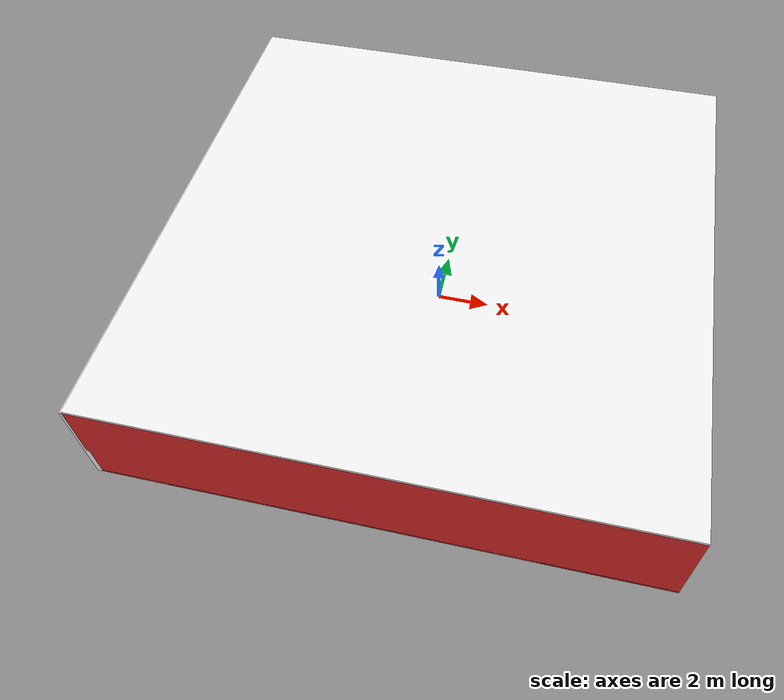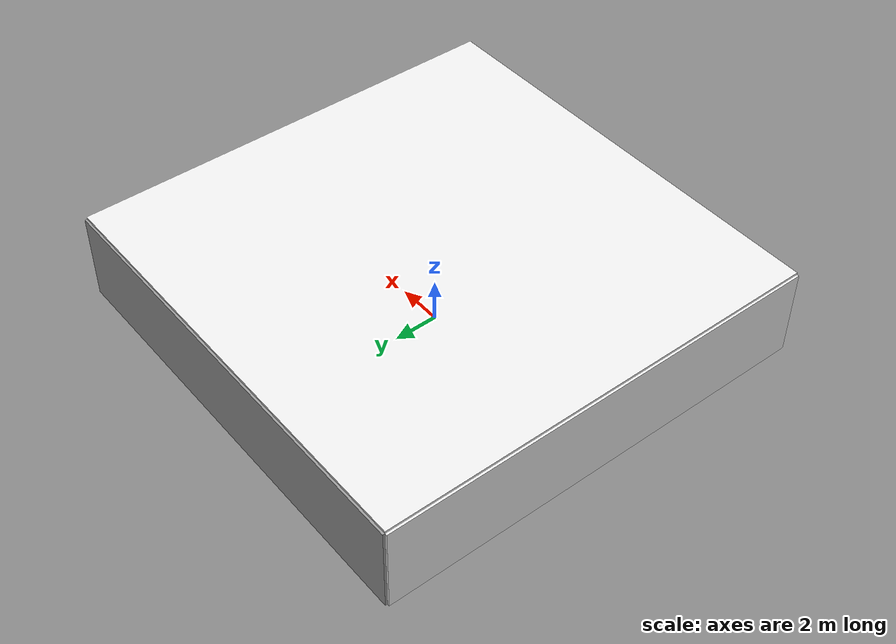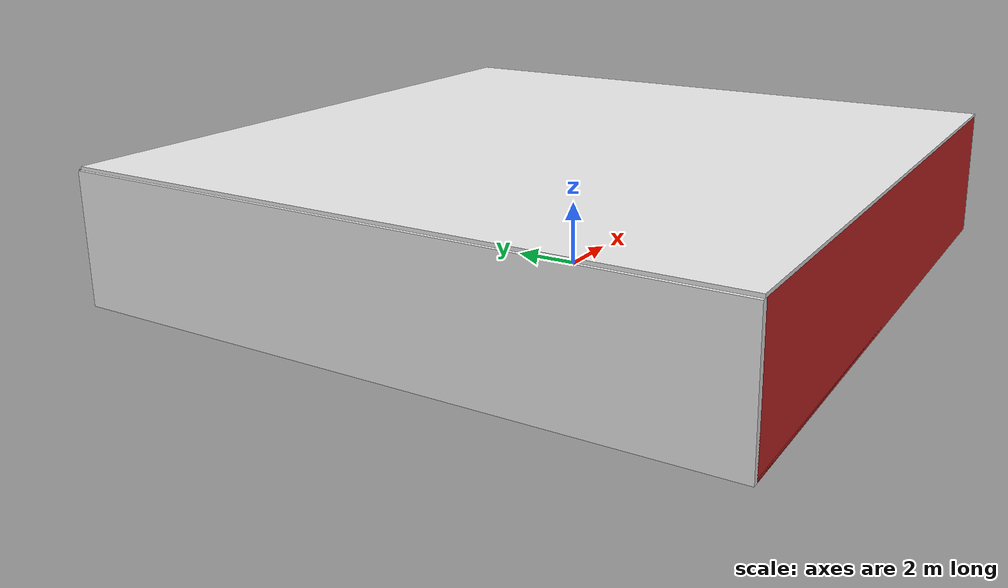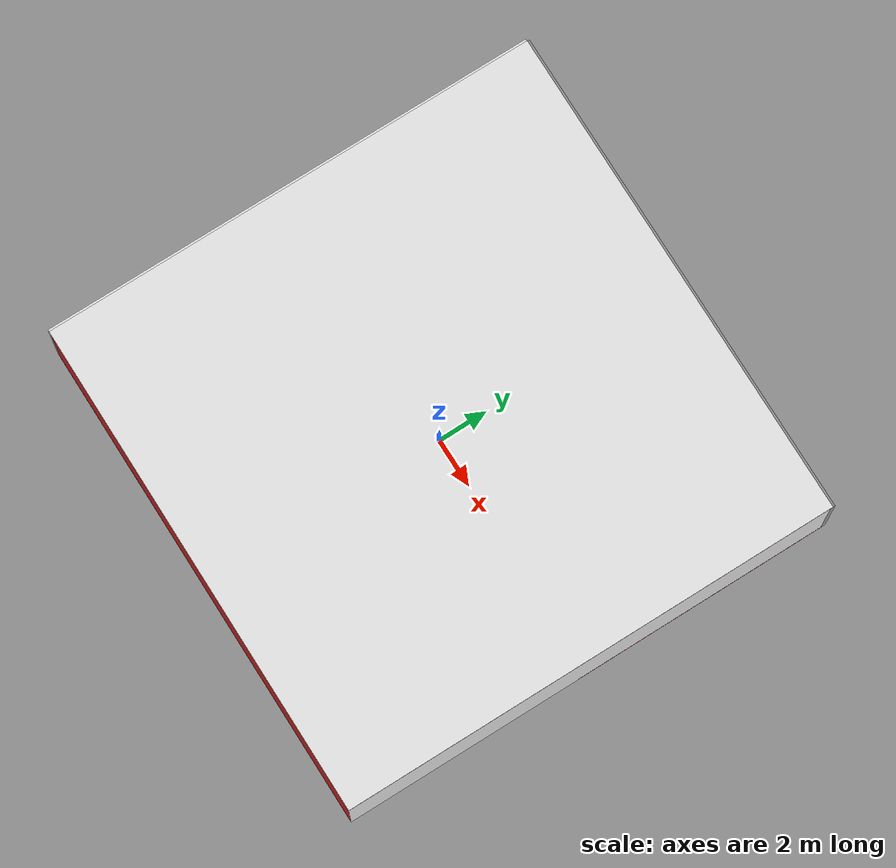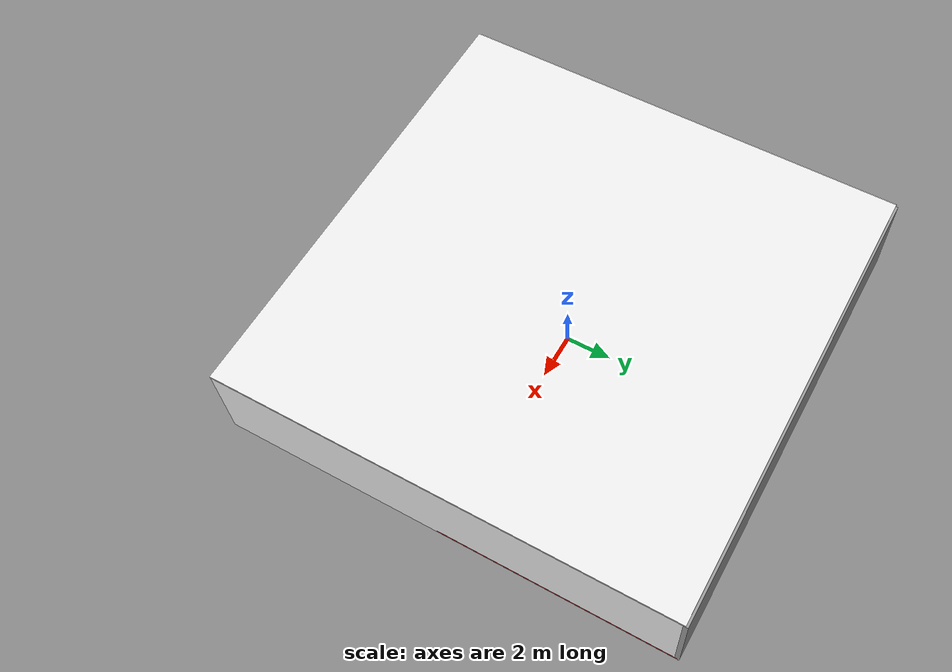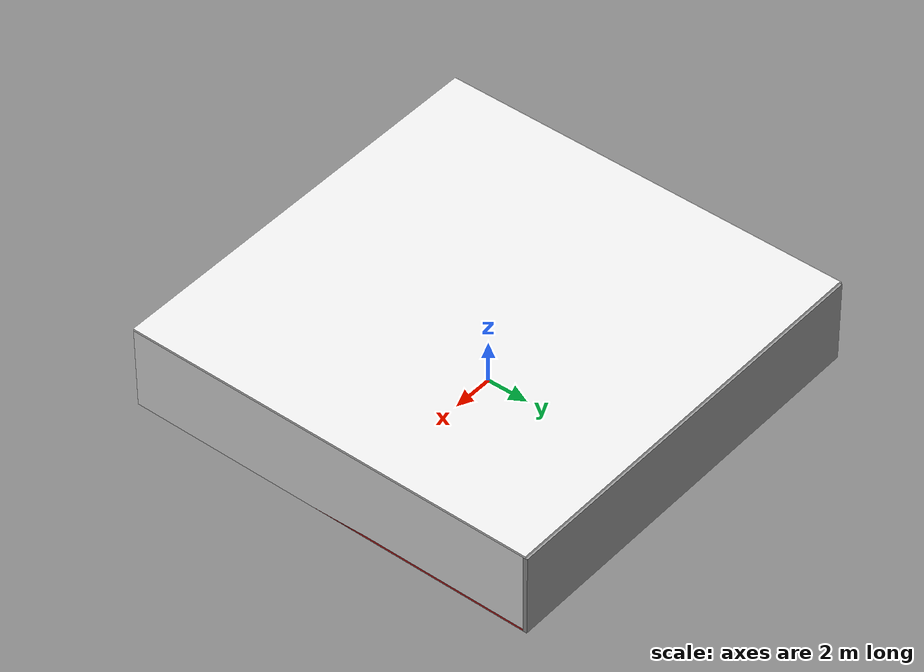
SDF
<sdf version="1.4">
 <world name="default">
  <physics type="ode">
   <max_step_size>0.001</max_step_size>
   <real_time_factor>1</real_time_factor>
   <real_time_update_rate>1000</real_time_update_rate>
   <gravity>0 0 -9.8</gravity>
  </physics>
  <scene><ambient>0.4 0.4 0.4 1</ambient><background>0.7 0.7 0.7 1</background><shadows>1</shadows></scene>
  <model name="Surrounding">
   <static>1</static>
   <link name="Ceiling">
    <collision name="Ceiling_Collision"><geometry><box><size>20 20 0.1</size></box></geometry></collision>
    <visual name="Ceiling_Visual">
     <geometry><box><size>20 20 0.1</size></box></geometry>
     <material>
      <script><uri>file://media/materials/scripts/gazebo.material</uri><name>Gazebo/WhiteGlow</name></script>
     </material>
    </visual>
    <pose>0 0 4.05 0 0 0</pose>
   </link>
   <link name="Wall_South">
    <collision name="Wall_South_Collision">
     <geometry><box><size>20 0 4</size></box></geometry>
     <pose>0 0 2 0 -0 0</pose>
    </collision>
    <visual name="Wall_South_Visual">
     <pose>0 0 2 0 -0 0</pose>
     <geometry><box><size>20 0 4</size></box></geometry>
     <material>
      <script><uri>file://media/materials/scripts/gazebo.material</uri><name>Gazebo/Red</name></script>
     </material>
    </visual>
    <velocity_decay><linear>0</linear><angular>0</angular></velocity_decay>
    <pose>0 -10 0 0 -0 0</pose>
   </link>
   <link name="Wall_East">
    <collision name="Wall_21_Collision">
     <geometry><box><size>20 0 4</size></box></geometry>
     <pose>0 0 2 0 -0 0</pose>
    </collision>
    <visual name="Wall_21_Visual">
     <pose>0 0 2 0 -0 0</pose>
     <geometry><box><size>20 0 4</size></box></geometry>
     <material>
      <script><uri>file://media/materials/scripts/gazebo.material</uri><name>Gazebo/White</name></script>
     </material>
    </visual>
    <velocity_decay><linear>0</linear><angular>0</angular></velocity_decay>
    <pose>10 0 0 0 -0 1.5708</pose>
   </link>
   <link name="Wall_North">
    <collision name="Wall_22_Collision">
     <geometry><box><size>20 0.2 4</size></box></geometry>
     <pose>0 0 2 0 -0 0</pose>
    </collision>
    <visual name="Wall_22_Visual">
     <pose>0 0 2 0 -0 0</pose>
     <geometry><box><size>20 0.2 4</size></box></geometry>
     <material>
      <script><uri>file://media/materials/scripts/gazebo.material</uri><name>Gazebo/GreyGradientSky</name></script>
     </material>
    </visual>
    <velocity_decay><linear>0</linear><angular>0</angular></velocity_decay>
    <pose>0 10 0 0 -0 0</pose>
   </link>
   <link name="Wall_West">
    <collision name="Wall_23_Collision">
     <geometry><box><size>20 0.2 4</size></box></geometry>
     <pose>0 0 2 0 -0 0</pose>
    </collision>
    <visual name="Wall_23_Visual">
     <pose>0 0 2 0 -0 0</pose>
     <geometry><box><size>20 0.2 4</size></box></geometry>
     <material>
      <script><uri>file://media/materials/scripts/gazebo.material</uri><name>Gazebo/White</name></script>
     </material>
    </visual>
    <velocity_decay><linear>0</linear><angular>0</angular></velocity_decay>
    <pose>-10 0 0 0 0 -1.5708</pose>
   </link>
   <link name="Ground_link">
    <collision name="collision">
     <pose>0 0 .05 0 -0 0</pose>
     <geometry><box><size>20 20 0.1</size></box></geometry>
    </collision>
    <visual name="visual">
     <pose>0 0 .05 0 -0 0</pose>
     <geometry><box><size>20 20 0.1</size></box></geometry>
     <material>
      <script><uri>file://media/materials/scripts/gazebo.material</uri><name>Gazebo/Red</name></script>
     </material>
    </visual>
   </link>
   <static>1</static>
  </model>
  <spherical_coordinates>
   <surface_model>EARTH_WGS84</surface_model>
   <latitude_deg>0</latitude_deg>
   <longitude_deg>0</longitude_deg>
   <elevation>0</elevation>
   <heading_deg>0</heading_deg>
  </spherical_coordinates>
  <light name="lightball_0" type="diffuse">
   <diffuse>0.8 0.8 0.8 1</diffuse>
   <specular>0.2 0.2 0.2 1</specular>
   <attenuation>
    <range>100</range>
    <constant>0.7</constant>
    <linear>0.01</linear>
    <quadratic>0.001</quadratic>
   </attenuation>
   <direction>-0.5 0.1 -0.9</direction>
   <pose>2.22484421128 3.55861361689 1.32795791333 0 0 0</pose>
  </light>
  <light name="lightball_1" type="diffuse">
   <diffuse>0.8 0.8 0.8 1</diffuse>
   <specular>0.2 0.2 0.2 1</specular>
   <attenuation>
    <range>100</range>
    <constant>0.7</constant>
    <linear>0.01</linear>
    <quadratic>0.001</quadratic>
   </attenuation>
   <direction>-0.5 0.1 -0.9</direction>
   <pose>6.3274678323 2.04402453179 2.7280852354 0 0 0</pose>
  </light>
  <light name="lightball_2" type="diffuse">
   <diffuse>0.8 0.8 0.8 1</diffuse>
   <specular>0.2 0.2 0.2 1</specular>
   <attenuation>
    <range>100</range>
    <constant>0.7</constant>
    <linear>0.01</linear>
    <quadratic>0.001</quadratic>
   </attenuation>
   <direction>-0.5 0.1 -0.9</direction>
   <pose>1.41873971504 -4.45965567535 0.970431337923 0 0 0</pose>
  </light>
  <light name="lightball_3" type="diffuse">
   <diffuse>0.8 0.8 0.8 1</diffuse>
   <specular>0.2 0.2 0.2 1</specular>
   <attenuation>
    <range>100</range>
    <constant>0.7</constant>
    <linear>0.01</linear>
    <quadratic>0.001</quadratic>
   </attenuation>
   <direction>-0.5 0.1 -0.9</direction>
   <pose>-1.35020859558 9.36754972823 1.14234675659 0 0 0</pose>
  </light>
  <light name="lightball_4" type="diffuse">
   <diffuse>0.8 0.8 0.8 1</diffuse>
   <specular>0.2 0.2 0.2 1</specular>
   <attenuation>
    <range>100</range>
    <constant>0.7</constant>
    <linear>0.01</linear>
    <quadratic>0.001</quadratic>
   </attenuation>
   <direction>-0.5 0.1 -0.9</direction>
   <pose>-1.13184343609 -3.79045046437 3.70837170839 0 0 0</pose>
  </light>
  <light name="lightball_5" type="diffuse">
   <diffuse>0.8 0.8 0.8 1</diffuse>
   <specular>0.2 0.2 0.2 1</specular>
   <attenuation>
    <range>100</range>
    <constant>0.7</constant>
    <linear>0.01</linear>
    <quadratic>0.001</quadratic>
   </attenuation>
   <direction>-0.5 0.1 -0.9</direction>
   <pose>-0.113660097723 8.36687624432 0.696673574753 0 0 0</pose>
  </light>
  <light name="lightball_6" type="diffuse">
   <diffuse>0.8 0.8 0.8 1</diffuse>
   <specular>0.2 0.2 0.2 1</specular>
   <attenuation>
    <range>100</range>
    <constant>0.7</constant>
    <linear>0.01</linear>
    <quadratic>0.001</quadratic>
   </attenuation>
   <direction>-0.5 0.1 -0.9</direction>
   <pose>8.87498732152 -8.81257837679 2.2583282053 0 0 0</pose>
  </light>
  <light name="lightball_7" type="diffuse">
   <diffuse>0.8 0.8 0.8 1</diffuse>
   <specular>0.2 0.2 0.2 1</specular>
   <attenuation>
    <range>100</range>
    <constant>0.7</constant>
    <linear>0.01</linear>
    <quadratic>0.001</quadratic>
   </attenuation>
   <direction>-0.5 0.1 -0.9</direction>
   <pose>-5.78674603646 1.88495061076 3.31165935231 0 0 0</pose>
  </light>
  <light name="lightball_8" type="diffuse">
   <diffuse>0.8 0.8 0.8 1</diffuse>
   <specular>0.2 0.2 0.2 1</specular>
   <attenuation>
    <range>100</range>
    <constant>0.7</constant>
    <linear>0.01</linear>
    <quadratic>0.001</quadratic>
   </attenuation>
   <direction>-0.5 0.1 -0.9</direction>
   <pose>-5.28401159866 -6.23225831079 0.844451998622 0 0 0</pose>
  </light>
  <light name="lightball_9" type="diffuse">
   <diffuse>0.8 0.8 0.8 1</diffuse>
   <specular>0.2 0.2 0.2 1</specular>
   <attenuation>
    <range>100</range>
    <constant>0.7</constant>
    <linear>0.01</linear>
    <quadratic>0.001</quadratic>
   </attenuation>
   <direction>-0.5 0.1 -0.9</direction>
   <pose>0.146987121293 -6.17166623249 2.4888207249 0 0 0</pose>
  </light>
  <light name="lightball_10" type="diffuse">
   <diffuse>0.8 0.8 0.8 1</diffuse>
   <specular>0.2 0.2 0.2 1</specular>
   <attenuation>
    <range>100</range>
    <constant>0.7</constant>
    <linear>0.01</linear>
    <quadratic>0.001</quadratic>
   </attenuation>
   <direction>-0.5 0.1 -0.9</direction>
   <pose>-6.60567419582 -2.82651413793 0.745597769878 0 0 0</pose>
  </light>
  <light name="lightball_11" type="diffuse">
   <diffuse>0.8 0.8 0.8 1</diffuse>
   <specular>0.2 0.2 0.2 1</specular>
   <attenuation>
    <range>100</range>
    <constant>0.7</constant>
    <linear>0.01</linear>
    <quadratic>0.001</quadratic>
   </attenuation>
   <direction>-0.5 0.1 -0.9</direction>
   <pose>0.321900613546 -3.86787412007 3.03282214618 0 0 0</pose>
  </light>
  <light name="lightball_12" type="diffuse">
   <diffuse>0.8 0.8 0.8 1</diffuse>
   <specular>0.2 0.2 0.2 1</specular>
   <attenuation>
    <range>100</range>
    <constant>0.7</constant>
    <linear>0.01</linear>
    <quadratic>0.001</quadratic>
   </attenuation>
   <direction>-0.5 0.1 -0.9</direction>
   <pose>-4.61768913443 -9.16779238423 0.781531194187 0 0 0</pose>
  </light>
  <include><uri>model://cabinet</uri><pose>-7.71558329549 3.63483307525 0 0 0 3.02561962032</pose></include>
  <include>
   <uri>model://construction_cone</uri>
   <pose>-4.53090757708 -7.78711542097 0 0 0 0.507501272971</pose>
  </include>
  <include>
   <uri>model://textured_shapes</uri>
   <pose>-3.80777534161 6.30778648927 0 0 0 0.711436201404</pose>
  </include>
  <include>
   <uri>model://robocup_3Dsim_goal</uri>
   <pose>-1.80554456232 -7.63320731788 0 0 0 2.34613373403</pose>
  </include>
  <include><uri>model://table</uri><pose>-0.882025297981 3.32511661623 0 0 0 1.34866967116</pose></include>
  <include>
   <uri>model://textured_shapes</uri>
   <pose>3.97488868347 -5.66195719324 0 0 0 1.39929923672</pose>
  </include>
  <include>
   <uri>model://robocup_3Dsim_goal</uri>
   <pose>4.33350771594 0.485168192322 0 0 0 0.470023852247</pose>
  </include>
  <include><uri>model://cabinet</uri><pose>4.72919937906 7.45774010309 0 0 0 2.15087339296</pose></include>
  <include><uri>model://table</uri><pose>8.51085209588 7.39849323296 0 0 0 2.97477356704</pose></include>
 </world>
</sdf>

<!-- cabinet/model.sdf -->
<sdf version="1.5">
  <model name="cabinet">
    <static>true</static>
    <link name="cabinet_bottom_plate">
      <inertial>
        <pose>0 0 -1 0 0 0</pose>
        <inertia>
          <ixx>2.050000</ixx>
          <ixy>0</ixy>
          <ixz>0</ixz>
          <iyy>2.050000</iyy>
          <iyz>0</iyz>
          <izz>2.050000</izz>
        </inertia>
        <mass>25.000000</mass>
      </inertial>
      <collision name="cabinet_bottom_plate_geom">
        <pose>0 0 0.010000 0 0 0</pose>
        <geometry>
          <box>
            <size>0.450000 0.450000 0.020000</size>
          </box>
        </geometry>
      </collision>
      <visual name="cabinet_bottom_plate_geom_visual">
        <pose>0 0 0.010000 0 0 0</pose>
        <geometry>
          <box>
            <size>0.450000 0.450000 0.020000</size>
          </box>
        </geometry>
        <material>
          <script>
            <uri>model://media/materials/scripts/gazebo.material</uri>
            <name>Gazebo/Wood</name>
          </script>
        </material>
      </visual>
      <collision name="cabinet_bottom_plate_geom_cabinet_back_plate">
        <pose>0.235000 0 0.510000 0 0 0</pose>
        <geometry>
          <box>
            <size>0.020000 0.450000 1.020000</size>
          </box>
        </geometry>
      </collision>
      <visual name="cabinet_bottom_plate_geom_cabinet_back_plate_visual">
        <pose>0.235000 0 0.510000 0 0 0</pose>
        <geometry>
          <box>
            <size>0.020000 0.450000 1.020000</size>
          </box>
        </geometry>
        <material>
          <script>
            <uri>model://media/materials/scripts/gazebo.material</uri>
            <name>Gazebo/Wood</name>
          </script>
        </material>
      </visual>
      <collision name="cabinet_bottom_plate_geom_cabinet_left_plate">
        <pose>0 0.235000 0.510000 0 0 0</pose>
        <geometry>
          <box>
            <size>0.450000 0.020000 1.020000</size>
          </box>
        </geometry>
      </collision>
      <visual name="cabinet_bottom_plate_geom_cabinet_left_plate_visual">
        <pose>0 0.235000 0.510000 0 0 0</pose>
        <geometry>
          <box>
            <size>0.450000 0.020000 1.020000</size>
          </box>
        </geometry>
        <material>
          <script>
            <uri>model://media/materials/scripts/gazebo.material</uri>
            <name>Gazebo/Wood</name>
          </script>
        </material>
      </visual>
      <collision name="cabinet_bottom_plate_geom_cabinet_middle_plate">
        <pose>0 0 0.510000 0 0 0</pose>
        <geometry>
          <box>
            <size>0.450000 0.450000 0.020000</size>
          </box>
        </geometry>
      </collision>
      <visual name="cabinet_bottom_plate_geom_cabinet_middle_plate_visual">
        <pose>0 0 0.510000 0 0 0</pose>
        <geometry>
          <box>
            <size>0.450000 0.450000 0.020000</size>
          </box>
        </geometry>
        <material>
          <script>
            <uri>model://media/materials/scripts/gazebo.material</uri>
            <name>Gazebo/Wood</name>
          </script>
        </material>
      </visual>
      <collision name="cabinet_bottom_plate_geom_cabinet_right_plate">
        <pose>0 -0.235000 0.510000 0 0 0</pose>
        <geometry>
          <box>
            <size>0.450000 0.020000 1.020000</size>
          </box>
        </geometry>
      </collision>
      <visual name="cabinet_bottom_plate_geom_cabinet_right_plate_visual">
        <pose>0 -0.235000 0.510000 0 0 0</pose>
        <geometry>
          <box>
            <size>0.450000 0.020000 1.020000</size>
          </box>
        </geometry>
        <material>
          <script>
            <uri>model://media/materials/scripts/gazebo.material</uri>
            <name>Gazebo/Wood</name>
          </script>
        </material>
      </visual>
      <collision name="cabinet_bottom_plate_geom_cabinet_top_plate">
        <pose>0 0 1.010000 0 0 0</pose>
        <geometry>
          <box>
            <size>0.450000 0.450000 0.020000</size>
          </box>
        </geometry>
      </collision>
      <visual name="cabinet_bottom_plate_geom_cabinet_top_plate_visual">
        <pose>0 0 1.010000 0 0 0</pose>
        <geometry>
          <box>
            <size>0.450000 0.450000 0.020000</size>
          </box>
        </geometry>
        <material>
          <script>
            <uri>model://media/materials/scripts/gazebo.material</uri>
            <name>Gazebo/Wood</name>
          </script>
        </material>
      </visual>
    </link>
  </model>
</sdf>

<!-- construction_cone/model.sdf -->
<sdf version="1.5">
  <model name="Construction Cone">
    <link name="link">
      <collision name="collision">
        <geometry>
          <mesh>
            <scale>10 10 10</scale>
            <uri>file://isr-testbed/construction_cone/meshes/construction_cone.dae</uri>
          </mesh>
        </geometry>
      </collision>
      <visual name="visual">
        <geometry>
          <mesh>
            <scale>10 10 10</scale>
            <uri>file://isr-testbed/construction_cone/meshes/construction_cone.dae</uri>
          </mesh>
        </geometry>
      </visual>
    </link>
  </model>
</sdf>

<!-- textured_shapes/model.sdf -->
<sdf version="1.6">
  <model name="textured_shapes">
    <pose>0 0 0.5 0 0 0</pose>
    <link name="box">
      <pose>0 -1.5 0 0 0 0</pose>
      <collision name="collision">
        <geometry>
          <box>
            <size>1 1 1</size>
          </box>
        </geometry>
      </collision>
      <visual name="visual">
        <geometry>
          <box>
            <size>1 1 1</size>
          </box>
        </geometry>
        <material>
          <script>
            <uri>model://../model_source/models/textured_shapes/materials/scripts</uri>
            <uri>model://../model_source/models/textured_shapes/materials/textures</uri>
            <name>TexturedShape/Squares</name>
          </script>
        </material>
      </visual>
    </link>
    <link name="sphere">
      <collision name="collision">
        <geometry>
          <sphere>
            <radius>0.5</radius>
          </sphere>
        </geometry>
      </collision>
      <visual name="visual">
        <geometry>
          <sphere>
            <radius>0.5</radius>
          </sphere>
        </geometry>
        <material>
          <script>
            <uri>model://../model_source/models/textured_shapes/materials/scripts</uri>
            <uri>model://../model_source/models/textured_shapes/materials/textures</uri>
            <name>TexturedShape/Squares</name>
          </script>
        </material>
      </visual>
    </link>
    <link name="cylinder">
      <pose>0 1.5 0 0 0 0</pose>
      <collision name="collision">
        <geometry>
          <cylinder>
            <radius>0.5</radius>
            <length>1</length>
          </cylinder>
        </geometry>
      </collision>
      <visual name="visual">
        <geometry>
          <cylinder>
            <radius>0.5</radius>
            <length>1</length>
          </cylinder>
        </geometry>
        <material>
          <script>
            <uri>model://../model_source/models/textured_shapes/materials/scripts</uri>
            <uri>model://../model_source/models/textured_shapes/materials/textures</uri>
            <name>TexturedShape/Squares</name>
          </script>
        </material>
      </visual>
    </link>
  </model>
</sdf>

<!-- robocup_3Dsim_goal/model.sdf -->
<sdf version="1.5">
  <model name="robocup_3d_goal">
    <static>true</static>
    <link name="left_post">
      <pose>0 1.05 0.45 0 0 0</pose>
      <collision name="collision">
        <geometry>
          <cylinder>
            <radius>0.05</radius>
            <length>0.9</length>
          </cylinder>
        </geometry>
      </collision>
      <visual name="visual">
        <geometry>
          <cylinder>
            <radius>0.05</radius>
            <length>0.9</length>
          </cylinder>
        </geometry>
        <material>
          <script>
            <uri>file://media/materials/scripts/gazebo.material</uri>
            <name>Gazebo/ZincYellow</name>
          </script>
        </material>
      </visual>
    </link>
    <link name="left_support_horiz_lower">
      <pose>0.30 1.05 0.01 0 0 0</pose>
      <collision name="collision">
        <geometry>
          <box>
            <size>0.50 0.02 0.02</size>
          </box>
        </geometry>
      </collision>
      <visual name="visual">
        <geometry>
          <box>
            <size>0.50 0.02 0.02</size>
          </box>
        </geometry>
        <material>
          <script>
            <uri>file://media/materials/scripts/gazebo.material</uri>
            <name>Gazebo/White</name>
          </script>
        </material>
      </visual>
    </link>
    <link name="left_support_horiz_upper">
      <pose>0.30 1.05 0.79 0 0 0</pose>
      <collision name="collision">
        <geometry>
          <box>
            <size>0.50 0.02 0.02</size>
          </box>
        </geometry>
      </collision>
      <visual name="visual">
        <geometry>
          <box>
            <size>0.50 0.02 0.02</size>
          </box>
        </geometry>
        <material>
          <script>
            <uri>file://media/materials/scripts/gazebo.material</uri>
            <name>Gazebo/White</name>
          </script>
        </material>
      </visual>
    </link>
    <link name="left_support_vertical">
      <pose>0.56 1.05 0.4 0 1.5708 0</pose>
      <collision name="collision">
        <geometry>
          <box>
            <size>0.80 0.02 0.02</size>
          </box>
        </geometry>
      </collision>
      <visual name="visual">
        <geometry>
          <box>
            <size>0.80 0.02 0.02</size>
          </box>
        </geometry>
        <material>
          <script>
            <uri>file://media/materials/scripts/gazebo.material</uri>
            <name>Gazebo/White</name>
          </script>
        </material>
      </visual>
    </link>
    <link name="right_support_horiz_lower">
      <pose>0.30 -1.05 0.01 0 0 0</pose>
      <collision name="collision">
        <geometry>
          <box>
            <size>0.50 0.02 0.02</size>
          </box>
        </geometry>
      </collision>
      <visual name="visual">
        <geometry>
          <box>
            <size>0.50 0.02 0.02</size>
          </box>
        </geometry>
        <material>
          <script>
            <uri>file://media/materials/scripts/gazebo.material</uri>
            <name>Gazebo/White</name>
          </script>
        </material>
      </visual>
    </link>
    <link name="right_support_horiz_upper">
      <pose>0.30 -1.05 0.79 0 0 0</pose>
      <collision name="collision">
        <geometry>
          <box>
            <size>0.50 0.02 0.02</size>
          </box>
        </geometry>
      </collision>
      <visual name="visual">
        <geometry>
          <box>
            <size>0.50 0.02 0.02</size>
          </box>
        </geometry>
        <material>
          <script>
            <uri>file://media/materials/scripts/gazebo.material</uri>
            <name>Gazebo/White</name>
          </script>
        </material>
      </visual>
    </link>
    <link name="right_support_vertical">
      <pose>0.56 -1.05 0.4 0 1.5708 0</pose>
      <collision name="collision">
        <geometry>
          <box>
            <size>0.80 0.02 0.02</size>
          </box>
        </geometry>
      </collision>
      <visual name="visual">
        <geometry>
          <box>
            <size>0.80 0.02 0.02</size>
          </box>
        </geometry>
        <material>
          <script>
            <uri>file://media/materials/scripts/gazebo.material</uri>
            <name>Gazebo/White</name>
          </script>
        </material>
      </visual>
    </link>
    <link name="center_support_horiz_lower">
      <pose>0.56 0 0.01 0 1.5708 0</pose>
      <collision name="collision">
        <geometry>
          <box>
            <size>0.02 2.08 0.02</size>
          </box>
        </geometry>
      </collision>
      <visual name="visual">
        <geometry>
          <box>
            <size>0.02 2.08 0.02</size>
          </box>
        </geometry>
        <material>
          <script>
            <uri>file://media/materials/scripts/gazebo.material</uri>
            <name>Gazebo/White</name>
          </script>
        </material>
      </visual>
    </link>
    <link name="center_support_horiz_upper">
      <pose>0.56 0 0.79 0 1.5708 0</pose>
      <collision name="collision">
        <geometry>
          <box>
            <size>0.02 2.08 0.02</size>
          </box>
        </geometry>
      </collision>
      <visual name="visual">
        <geometry>
          <box>
            <size>0.02 2.08 0.02</size>
          </box>
        </geometry>
        <material>
          <script>
            <uri>file://media/materials/scripts/gazebo.material</uri>
            <name>Gazebo/White</name>
          </script>
        </material>
      </visual>
    </link>
    <link name="right_post">
      <pose>0 -1.05 0.45 0 0 0</pose>
      <collision name="collision">
        <geometry>
          <cylinder>
            <radius>0.05</radius>
            <length>0.9</length>
          </cylinder>
        </geometry>
      </collision>
      <visual name="visual">
        <geometry>
          <cylinder>
            <radius>0.05</radius>
            <length>0.9</length>
          </cylinder>
        </geometry>
        <material>
          <script>
            <uri>file://media/materials/scripts/gazebo.material</uri>
            <name>Gazebo/ZincYellow</name>
          </script>
        </material>
      </visual>
    </link>
    <link name="crossbar">
      <pose>0 0 0.85 1.57 1.57 0</pose>
      <collision name="collision">
        <geometry>
          <cylinder>
            <radius>0.05</radius>
            <length>2.0</length>
          </cylinder>
        </geometry>
      </collision>
      <visual name="visual">
        <geometry>
          <cylinder>
            <radius>0.05</radius>
            <length>2.0</length>
          </cylinder>
        </geometry>
        <material>
          <script>
            <uri>file://media/materials/scripts/gazebo.material</uri>
            <name>Gazebo/ZincYellow</name>
          </script>
        </material>
      </visual>
    </link>
    <link name="center_net">
      <pose>0.56 0 0.40 0 0 0</pose>
      <collision name="collision">
        <geometry>
          <box>
            <size>0.01 2.1 0.80</size>
          </box>
        </geometry>
      </collision>
      <visual name="visual">
        <geometry>
          <box>
            <size>0.01 2.1 0.80</size>
          </box>
        </geometry>
        <material>
          <script>
            <uri>model://../model_source/models/robocup09_spl_field/materials/scripts/</uri>
            <uri>model://../model_source/models/robocup09_spl_field/materials/textures/</uri>
            <name>RoboCup/Net</name>
          </script>
        </material>
      </visual>
    </link>
    <link name="left_net">
      <pose>0.30 1.05 0.40 0 0 0</pose>
      <collision name="collision">
        <geometry>
          <box>
            <size>0.50 0.01 0.76</size>
          </box>
        </geometry>
      </collision>
      <visual name="visual">
        <geometry>
          <box>
            <size>0.50 0.01 0.76</size>
          </box>
        </geometry>
        <material>
          <script>
            <uri>model://../model_source/models/robocup09_spl_field/materials/scripts/</uri>
            <uri>model://../model_source/models/robocup09_spl_field/materials/textures/</uri>
            <name>RoboCup/Net</name>
          </script>
        </material>
      </visual>
    </link>
    <link name="right_net">
      <pose>0.30 -1.05 0.40 0 0 0</pose>
      <collision name="collision">
        <geometry>
          <box>
            <size>0.50 0.01 0.76</size>
          </box>
        </geometry>
      </collision>
      <visual name="visual">
        <geometry>
          <box>
            <size>0.50 0.01 0.76</size>
          </box>
        </geometry>
        <material>
          <script>
            <uri>model://../model_source/models/robocup09_spl_field/materials/scripts/</uri>
            <uri>model://../model_source/models/robocup09_spl_field/materials/textures/</uri>
            <name>RoboCup/Net</name>
          </script>
        </material>
      </visual>
    </link>
  </model>
</sdf>

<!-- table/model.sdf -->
<sdf version="1.5">
  <model name="table">
    <static>true</static>
    <link name="link">
      <collision name="surface">
        <pose>0 0 1.0 0 0 0</pose>
        <geometry>
          <box>
            <size>1.5 0.8 0.03</size>
          </box>
        </geometry>
        <surface>
          <friction>
            <ode>
              <mu>0.6</mu>
              <mu2>0.6</mu2>
            </ode>
          </friction>
        </surface>
      </collision>
      <visual name="visual1">
        <pose>0 0 1.0 0 0 0</pose>
        <geometry>
          <box>
            <size>1.5 0.8 0.03</size>
          </box>
        </geometry>
        <material>
          <script>
            <uri>model://media/materials/scripts/gazebo.material</uri>
            <name>Gazebo/Wood</name>
          </script>
        </material>
      </visual>
      <collision name="front_left_leg">
        <pose>0.68 0.38 0.5 0 0 0</pose>
        <geometry>
          <cylinder>
            <radius>0.02</radius>
            <length>1.0</length>
          </cylinder>
        </geometry>
      </collision>
      <visual name="front_left_leg">
        <pose>0.68 0.38 0.5 0 0 0</pose>
        <geometry>
          <cylinder>
            <radius>0.02</radius>
            <length>1.0</length>
          </cylinder>
        </geometry>
        <material>
          <script>
            <uri>model://media/materials/scripts/gazebo.material</uri>
            <name>Gazebo/Grey</name>
          </script>
        </material>
      </visual>
      <collision name="front_right_leg">
        <pose>0.68 -0.38 0.5 0 0 0</pose>
        <geometry>
          <cylinder>
            <radius>0.02</radius>
            <length>1.0</length>
          </cylinder>
        </geometry>
      </collision>
      <visual name="front_right_leg">
        <pose>0.68 -0.38 0.5 0 0 0</pose>
        <geometry>
          <cylinder>
            <radius>0.02</radius>
            <length>1.0</length>
          </cylinder>
        </geometry>
        <material>
          <script>
            <uri>model://media/materials/scripts/gazebo.material</uri>
            <name>Gazebo/Grey</name>
          </script>
        </material>
      </visual>
      <collision name="back_right_leg">
        <pose>-0.68 -0.38 0.5 0 0 0</pose>
        <geometry>
          <cylinder>
            <radius>0.02</radius>
            <length>1.0</length>
          </cylinder>
        </geometry>
      </collision>
      <visual name="back_right_leg">
        <pose>-0.68 -0.38 0.5 0 0 0</pose>
        <geometry>
          <cylinder>
            <radius>0.02</radius>
            <length>1.0</length>
          </cylinder>
        </geometry>
        <material>
          <script>
            <uri>model://media/materials/scripts/gazebo.material</uri>
            <name>Gazebo/Grey</name>
          </script>
        </material>
      </visual>
      <collision name="back_left_leg">
        <pose>-0.68 0.38 0.5 0 0 0</pose>
        <geometry>
          <cylinder>
            <radius>0.02</radius>
            <length>1.0</length>
          </cylinder>
        </geometry>
      </collision>
      <visual name="back_left_leg">
        <pose>-0.68 0.38 0.5 0 0 0</pose>
        <geometry>
          <cylinder>
            <radius>0.02</radius>
            <length>1.0</length>
          </cylinder>
        </geometry>
        <material>
          <script>
            <uri>model://media/materials/scripts/gazebo.material</uri>
            <name>Gazebo/Grey</name>
          </script>
        </material>
      </visual>
    </link>
  </model>
</sdf>
